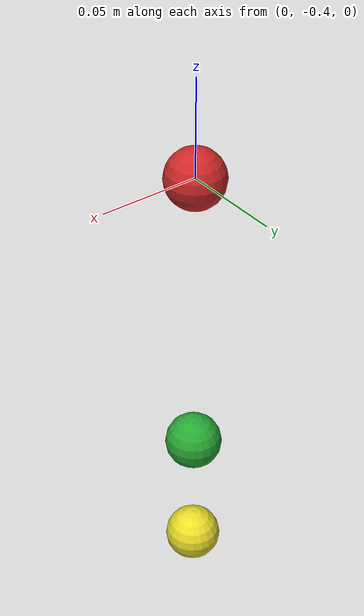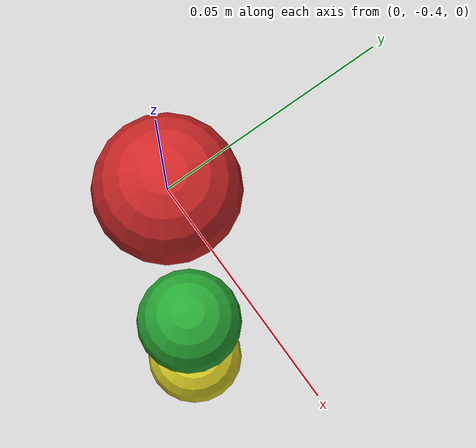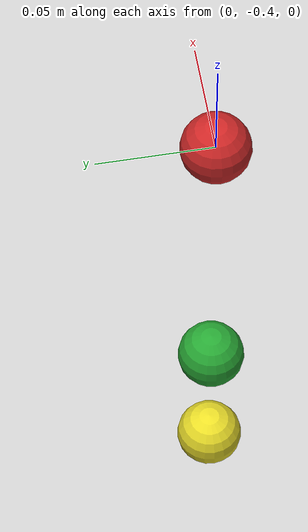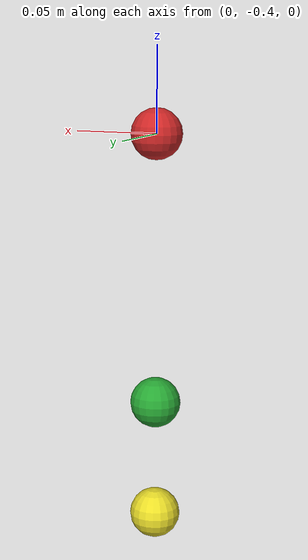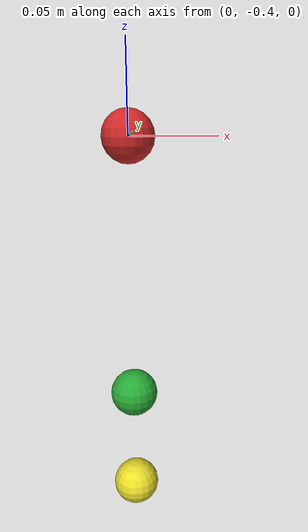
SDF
<sdf version='1.6'>
  <world name='default'>

<model name='unit_sphere'>
      <pose frame=''>0 0 0 0 0 0</pose>
      <link name='light_g'>
        <inertial>
          <mass>1</mass>
          <inertia>
            <ixx>0.1</ixx>
            <ixy>0</ixy>
            <ixz>0</ixz>
            <iyy>0.1</iyy>
            <iyz>0</iyz>
            <izz>0.1</izz>
          </inertia>
        </inertial>
        <collision name='collision'>
          <pose frame=''>0 -0.4 0 0 0 0</pose>
          <geometry>
            <sphere>
              <radius>0.015</radius>
            </sphere>
          </geometry>
          <max_contacts>10</max_contacts>
          <surface>
            <contact>
              <ode/>
            </contact>
            <bounce/>
            <friction>
              <torsional>
                <ode/>
              </torsional>
              <ode/>
            </friction>
          </surface>
        </collision>
        <visual name='visual'>
          <pose frame=''>0 -0.4 0 0 0 0</pose>
          <geometry>
            <sphere>
              <radius>0.015</radius>
            </sphere>
          </geometry>
          <material>
            <script>
              <name>Gazebo/Red</name>
              <uri>file://media/materials/scripts/gazebo.material</uri>
            </script>
          </material>
        </visual>
        <self_collide>0</self_collide>
        <kinematic>0</kinematic>
      </link>
      <plugin name="traffic_control" filename="build/libtraffic_control.so"/>
      <static>1</static>
    </model>
    <model name='unit_sphere_clone'>
      <pose frame=''>0 0 0 0 -0 0</pose>
      <link name='light_r'>
        <inertial>
          <mass>1</mass>
          <inertia>
            <ixx>0.1</ixx>
            <ixy>0</ixy>
            <ixz>0</ixz>
            <iyy>0.1</iyy>
            <iyz>0</iyz>
            <izz>0.1</izz>
          </inertia>
        </inertial>
        <collision name='collision'>
          <pose frame=''>0 -0.4 -0.16 0 0 0</pose>
          <geometry>
            <sphere>
              <radius>0.015</radius>
            </sphere>
          </geometry>
          <max_contacts>10</max_contacts>
          <surface>
            <contact>
              <ode/>
            </contact>
            <bounce/>
            <friction>
              <torsional>
                <ode/>
              </torsional>
              <ode/>
            </friction>
          </surface>
        </collision>
        <visual name='visual'>
          <pose frame=''>0 -0.4 -0.16 0 0 0</pose>
          <geometry>
            <sphere>
              <radius>0.015</radius>
            </sphere>
          </geometry>
          <material>
            <script>
              <name>Gazebo/Green</name>
              <uri>file://media/materials/scripts/gazebo.material</uri>
            </script>
          </material>
        </visual>
        <self_collide>0</self_collide>
        <kinematic>0</kinematic>
      </link>
      <plugin name="traffic_control" filename="build/libtraffic_control.so"/>
      <static>1</static>
    </model>
    <model name='unit_sphere_clone_clone'>
      <pose frame=''>0 0 0 0 0 0</pose>
      <link name='light_y'>
        <inertial>
          <mass>1</mass>
          <inertia>
            <ixx>0.1</ixx>
            <ixy>0</ixy>
            <ixz>0</ixz>
            <iyy>0.1</iyy>
            <iyz>0</iyz>
            <izz>0.1</izz>
          </inertia>
        </inertial>
        <collision name='collision'>
          <pose frame=''>0 -0.4 -0.23 0 0 0</pose>
          <geometry>
            <sphere>
              <radius>0.015</radius>
            </sphere>
          </geometry>
          <max_contacts>10</max_contacts>
          <surface>
            <contact>
              <ode/>
            </contact>
            <bounce/>
            <friction>
              <torsional>
                <ode/>
              </torsional>
              <ode/>
            </friction>
          </surface>
        </collision>
        <visual name='visual'>
          <pose frame=''>0 -0.4 -0.23 0 0 0</pose>
          <geometry>
            <sphere>
              <radius>0.015</radius>
            </sphere>
          </geometry>
          <material>
            <script>
              <name>Gazebo/Yellow</name>
              <uri>file://media/materials/scripts/gazebo.material</uri>
            </script>
          </material>
        </visual>
        <self_collide>0</self_collide>
        <kinematic>0</kinematic>
      </link>
      <plugin name="traffic_control" filename="build/libtraffic_control.so"/>
      <static>1</static>
    </model>
   </world>
</sdf>
